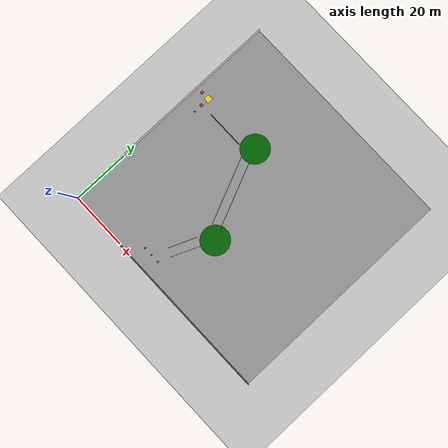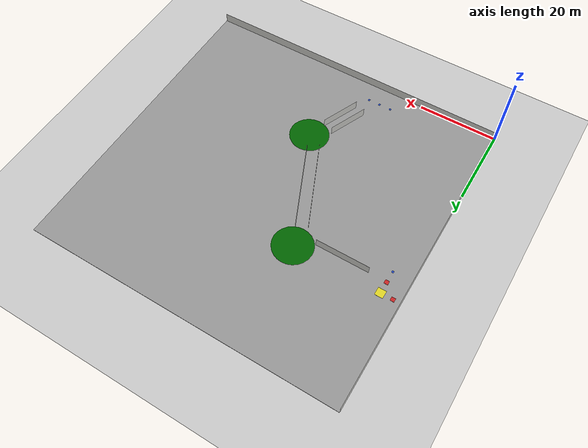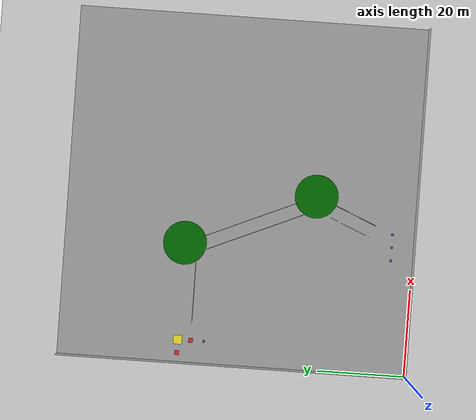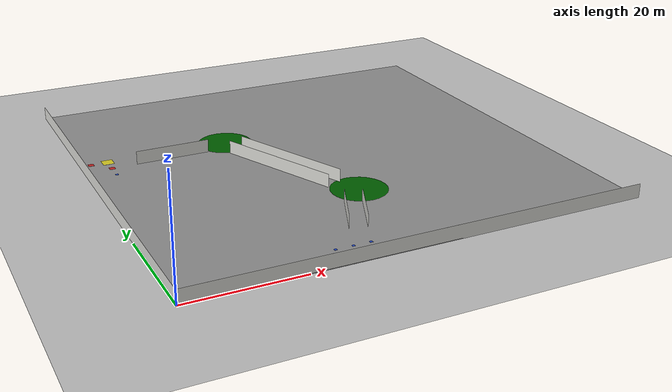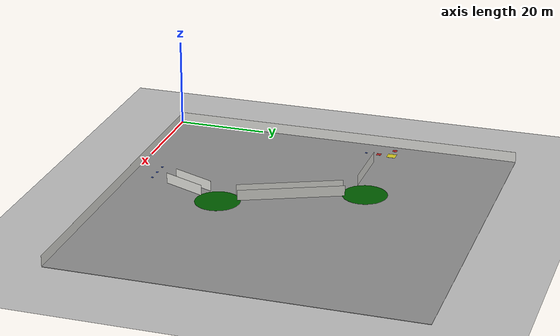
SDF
<sdf version="1.6">
 <world name="default">
  <model name="ground_plane">
   <static>1</static>
   <link name="link">
    <collision name="collision">
     <geometry><plane><normal>0 0 1</normal><size>100 100</size></plane></geometry>
     <surface><friction><ode><mu>100</mu><mu2>50</mu2></ode></friction></surface>
    </collision>
    <visual name="visual">
     <cast_shadows>0</cast_shadows>
     <geometry><plane><normal>0 0 1</normal><size>100 100</size></plane></geometry>
     <material>
      <script><uri>file://media/materials/scripts/gazebo.material</uri><name>Gazebo/Grey</name></script>
     </material>
    </visual>
   </link>
  </model>
  <model name="EMS_WALL">
   <pose>0 40 0 0 -0 0</pose>
   <link name="Wall_28">
    <collision name="Wall_28_Collision">
     <geometry><box><size>80 0.001 2.5</size></box></geometry>
     <pose>0 0 1.25 0 -0 0</pose>
    </collision>
    <visual name="Wall_28_Visual">
     <pose>0 0 1.25 0 -0 0</pose>
     <geometry><box><size>80 0.001 2.5</size></box></geometry>
     <material>
      <script><uri>file://media/materials/scripts/gazebo.material</uri><name>Gazebo/CeilingTiled</name></script>
      <ambient>1 0.764706 0.305882 1</ambient>
     </material>
    </visual>
    <pose>0 2e-06 0 0 -0 1.5708</pose>
   </link>
   <static>1</static>
  </model>
  <model name="EMS_WALL_clone_clone">
   <pose>40 0 0 0 -0 1.57</pose>
   <link name="Wall_28">
    <collision name="Wall_28_Collision">
     <geometry><box><size>80 0.001 2.5</size></box></geometry>
     <pose>0 0 1.25 0 -0 0</pose>
    </collision>
    <visual name="Wall_28_Visual">
     <pose>0 0 1.25 0 -0 0</pose>
     <geometry><box><size>80 0.001 2.5</size></box></geometry>
     <material>
      <script><uri>file://media/materials/scripts/gazebo.material</uri><name>Gazebo/CeilingTiled</name></script>
      <ambient>1 0.764706 0.305882 1</ambient>
     </material>
    </visual>
    <pose>0 2e-06 0 0 -0 1.5708</pose>
   </link>
   <static>1</static>
  </model>
  <model name="EMS_FLOOR_4">
   <pose>40 40 0 0 -0 0</pose>
   <link name="Wall_32">
    <collision name="Wall_32_Collision">
     <geometry><box><size>80.01 80 0.1</size></box></geometry>
     <pose>0 0 0.05 0 -0 0</pose>
    </collision>
    <visual name="Wall_32_Visual">
     <pose>0 0 0.05 0 -0 0</pose>
     <geometry><box><size>80.01 80 0.1</size></box></geometry>
     <material>
      <script><uri>file://media/materials/scripts/gazebo.material</uri><name>Gazebo/Grey</name></script>
      <ambient>1 1 1 1</ambient>
     </material>
    </visual>
    <pose>0 -1e-06 0 0 -0 1.5708</pose>
   </link>
   <static>1</static>
  </model>
  <model name="351_0">
   <pose>33.725 37.625 0 0 -0 0</pose>
   <link name="Wall_4">
    <collision name="Wall_4_Collision">
     <geometry><box><size>23.3941 0.001 2.5</size></box></geometry>
     <pose>0 0 1.25 0 -0 0</pose>
    </collision>
    <visual name="Wall_4_Visual">
     <pose>0 0 1.25 0 -0 0</pose>
     <geometry><box><size>23.3941 0.001 2.5</size></box></geometry>
     <material>
      <script><uri>file://media/materials/scripts/gazebo.material</uri><name>Gazebo/CeilingTiled</name></script>
      <ambient>0.435294 0.796078 0.67451 1</ambient>
     </material>
    </visual>
    <pose>1e-06 0 0 0 -0 1.9806</pose>
   </link>
   <static>1</static>
  </model>
  <model name="351_0_clone">
   <pose>30.9609 36.459 0 0 -0 0</pose>
   <link name="Wall_4">
    <collision name="Wall_4_Collision">
     <geometry><box><size>23.3941 0.001 2.5</size></box></geometry>
     <pose>0 0 1.25 0 -0 0</pose>
    </collision>
    <visual name="Wall_4_Visual">
     <pose>0 0 1.25 0 -0 0</pose>
     <geometry><box><size>23.3941 0.001 2.5</size></box></geometry>
     <material>
      <script><uri>file://media/materials/scripts/gazebo.material</uri><name>Gazebo/CeilingTiled</name></script>
      <ambient>0.435294 0.796078 0.67451 1</ambient>
     </material>
    </visual>
    <pose>1e-06 0 0 0 -0 1.9806</pose>
   </link>
   <static>1</static>
  </model>
  <model name="353_clone">
   <pose>16.225 49.5 0 0 -0 0</pose>
   <link name="Wall_10">
    <collision name="Wall_10_Collision">
     <geometry><box><size>13.45 0.001 2.5</size></box></geometry>
     <pose>0 0 1.25 0 -0 0</pose>
    </collision>
    <visual name="Wall_10_Visual">
     <pose>0 0 1.25 0 -0 0</pose>
     <geometry><box><size>13.45 0.001 2.5</size></box></geometry>
     <material>
      <script><uri>file://media/materials/scripts/gazebo.material</uri><name>Gazebo/CeilingTiled</name></script>
      <ambient>0.435294 0.796078 0.67451 1</ambient>
     </material>
    </visual>
    <pose>0 0 0 0 -0 3.14159</pose>
   </link>
   <static>1</static>
  </model>
  <model name="355">
   <pose>33.4866 15.0427 0 0 -0 0</pose>
   <link name="Wall_12">
    <collision name="Wall_12_Collision">
     <geometry><box><size>10.2688 0.001 2.5</size></box></geometry>
     <pose>0 0 1.25 0 -0 0</pose>
    </collision>
    <visual name="Wall_12_Visual">
     <pose>0 0 1.25 0 -0 0</pose>
     <geometry><box><size>10.2688 0.001 2.5</size></box></geometry>
     <material>
      <script><uri>file://media/materials/scripts/gazebo.material</uri><name>Gazebo/CeilingTiled</name></script>
      <ambient>0.435294 0.796078 0.67451 1</ambient>
     </material>
    </visual>
    <pose>0 0 0 0 -0 1.17099</pose>
   </link>
   <static>1</static>
  </model>
  <model name="355_clone">
   <pose>36.25 13.875 0 0 -0 0</pose>
   <link name="Wall_12">
    <collision name="Wall_12_Collision">
     <geometry><box><size>10.2688 0.001 2.5</size></box></geometry>
     <pose>0 0 1.25 0 -0 0</pose>
    </collision>
    <visual name="Wall_12_Visual">
     <pose>0 0 1.25 0 -0 0</pose>
     <geometry><box><size>10.2688 0.001 2.5</size></box></geometry>
     <material>
      <script><uri>file://media/materials/scripts/gazebo.material</uri><name>Gazebo/CeilingTiled</name></script>
      <ambient>0.435294 0.796078 0.67451 1</ambient>
     </material>
    </visual>
    <pose>0 0 0 0 -0 1.17099</pose>
   </link>
   <static>1</static>
  </model>
  <model name="my_objectT3">
   <link name="my_box">
    <inertial>
     <mass>1</mass>
     <inertia><ixx>1</ixx><ixy>0</ixy><ixz>0</ixz><iyy>100</iyy><iyz>0</iyz><izz>1</izz></inertia>
    </inertial>
    <collision name="my_box_collision"><geometry><box><size>2 2 0.01</size></box></geometry></collision>
    <visual name="my_box_visual">
     <geometry><box><size>2 2 0.01</size></box></geometry>
     <material>
      <script><name>Gazebo/Yellow</name><uri>file://media/materials/scripts/gazebo.material</uri></script>
     </material>
    </visual>
   </link>
   <pose>5.00076 52.4982 0.115003 -5e-06 7e-06 -0.000127</pose>
  </model>
  <model name="my_objecteg1w1">
   <link name="my_box">
    <inertial>
     <mass>1</mass>
     <inertia><ixx>1</ixx><ixy>0</ixy><ixz>0</ixz><iyy>100</iyy><iyz>0</iyz><izz>1</izz></inertia>
    </inertial>
    <collision name="my_box_collision"><geometry><box><size>1 1 0.01</size></box></geometry></collision>
    <visual name="my_box_visual">
     <geometry><box><size>1 1 0.01</size></box></geometry>
     <material>
      <script><name>Gazebo/Red</name><uri>file://media/materials/scripts/gazebo.material</uri></script>
     </material>
    </visual>
   </link>
   <pose>2 52.5 0.104995 0 -0 0</pose>
  </model>
  <model name="my_objecteg1w3">
   <link name="my_box">
    <inertial>
     <mass>1</mass>
     <inertia><ixx>1</ixx><ixy>0</ixy><ixz>0</ixz><iyy>100</iyy><iyz>0</iyz><izz>1</izz></inertia>
    </inertial>
    <collision name="my_box_collision"><geometry><box><size>1 1 0.01</size></box></geometry></collision>
    <visual name="my_box_visual">
     <geometry><box><size>1 1 0.01</size></box></geometry>
     <material>
      <script><name>Gazebo/Red</name><uri>file://media/materials/scripts/gazebo.material</uri></script>
     </material>
    </visual>
   </link>
   <pose>5.00058 49.4987 0.115012 4.2e-05 7e-06 0.000115</pose>
  </model>
  <model name="my_objectg2w1">
   <link name="my_box">
    <inertial>
     <mass>1</mass>
     <inertia><ixx>1</ixx><ixy>0</ixy><ixz>0</ixz><iyy>100</iyy><iyz>0</iyz><izz>1</izz></inertia>
    </inertial>
    <collision name="my_box_collision"><geometry><box><size>0.5 0.5 0.01</size></box></geometry></collision>
    <visual name="my_box_visual">
     <geometry><box><size>0.5 0.5 0.01</size></box></geometry>
     <material>
      <script><name>Gazebo/Blue</name><uri>file://media/materials/scripts/gazebo.material</uri></script>
     </material>
    </visual>
   </link>
   <pose>32.4976 5.00481 0.104995 1e-06 0 -0.000205</pose>
  </model>
  <model name="my_objectg2w2">
   <link name="my_box">
    <inertial>
     <mass>1</mass>
     <inertia><ixx>1</ixx><ixy>0</ixy><ixz>0</ixz><iyy>100</iyy><iyz>0</iyz><izz>1</izz></inertia>
    </inertial>
    <collision name="my_box_collision"><geometry><box><size>0.5 0.5 0.01</size></box></geometry></collision>
    <visual name="my_box_visual">
     <geometry><box><size>0.5 0.5 0.01</size></box></geometry>
     <material>
      <script><name>Gazebo/Blue</name><uri>file://media/materials/scripts/gazebo.material</uri></script>
     </material>
    </visual>
   </link>
   <pose>29.497 5.00463 0.104995 1e-06 0 -0.000266</pose>
  </model>
  <model name="my_objectg2w3">
   <link name="my_box">
    <inertial>
     <mass>1</mass>
     <inertia><ixx>1</ixx><ixy>0</ixy><ixz>0</ixz><iyy>100</iyy><iyz>0</iyz><izz>1</izz></inertia>
    </inertial>
    <collision name="my_box_collision"><geometry><box><size>0.5 0.5 0.01</size></box></geometry></collision>
    <visual name="my_box_visual">
     <geometry><box><size>0.5 0.5 0.01</size></box></geometry>
     <material>
      <script><name>Gazebo/Blue</name><uri>file://media/materials/scripts/gazebo.material</uri></script>
     </material>
    </visual>
   </link>
   <pose>26.4965 5.00563 0.104996 -1e-06 -0 -0.00103</pose>
  </model>
  <model name="my_objectg4w2">
   <link name="my_box">
    <inertial>
     <mass>1</mass>
     <inertia><ixx>1</ixx><ixy>0</ixy><ixz>0</ixz><iyy>100</iyy><iyz>0</iyz><izz>1</izz></inertia>
    </inertial>
    <collision name="my_box_collision"><geometry><box><size>0.5 0.5 0.01</size></box></geometry></collision>
    <visual name="my_box_visual">
     <geometry><box><size>0.5 0.5 0.01</size></box></geometry>
     <material>
      <script><name>Gazebo/Blue</name><uri>file://media/materials/scripts/gazebo.material</uri></script>
     </material>
    </visual>
   </link>
   <pose>4.99364 49.5095 0.105002 -0 7e-06 -0.000332</pose>
  </model>
  <model name="my_objectg4w3">
   <link name="my_box">
    <inertial>
     <mass>1</mass>
     <inertia><ixx>1</ixx><ixy>0</ixy><ixz>0</ixz><iyy>100</iyy><iyz>0</iyz><izz>1</izz></inertia>
    </inertial>
    <collision name="my_box_collision"><geometry><box><size>0.5 0.5 0.01</size></box></geometry></collision>
    <visual name="my_box_visual">
     <geometry><box><size>0.5 0.5 0.01</size></box></geometry>
     <material>
      <script><name>Gazebo/Blue</name><uri>file://media/materials/scripts/gazebo.material</uri></script>
     </material>
    </visual>
   </link>
   <pose>4.99409 46.509 0.104999 0 0 -0.000407</pose>
  </model>
  <model name="unit_cylinder_0_3">
   <link name="link">
    <inertial>
     <mass>1</mass>
     <inertia><ixx>0.145833</ixx><ixy>0</ixy><ixz>0</ixz><iyy>0.145833</iyy><iyz>0</iyz><izz>0.125</izz></inertia>
    </inertial>
    <gravity>0</gravity>
    <visual name="visual">
     <geometry><cylinder><radius>5</radius><length>0.01</length></cylinder></geometry>
     <material>
      <script><name>Gazebo/Grey</name><uri>file://media/materials/scripts/gazebo.material</uri></script>
      <ambient>0 0.4 0 0</ambient>
      <diffuse>0 0.4 0 0</diffuse>
      <specular>0 0.41 0 0</specular>
      <emissive>0 0.4 0 0</emissive>
      <shader type="vertex"><normal_map>__default__</normal_map></shader>
     </material>
    </visual>
   </link>
   <static>0</static>
   <pose>39.9922 22.9648 0.1 0 -0 0</pose>
  </model>
  <model name="unit_cylinder_0_3_clone_clone">
   <link name="link">
    <inertial>
     <mass>1</mass>
     <inertia><ixx>0.145833</ixx><ixy>0</ixy><ixz>0</ixz><iyy>0.145833</iyy><iyz>0</iyz><izz>0.125</izz></inertia>
    </inertial>
    <gravity>0</gravity>
    <visual name="visual">
     <geometry><cylinder><radius>5</radius><length>0.01</length></cylinder></geometry>
     <material>
      <script><name>Gazebo/Grey</name><uri>file://media/materials/scripts/gazebo.material</uri></script>
      <ambient>0 0.4 0 0</ambient>
      <diffuse>0 0.4 0 0</diffuse>
      <specular>0 0.41 0 0</specular>
      <emissive>0 0.4 0 0</emissive>
      <shader type="vertex"><normal_map>__default__</normal_map></shader>
     </material>
    </visual>
   </link>
   <static>0</static>
   <pose>27.2881 52.3623 0.1 0 -0 0</pose>
  </model>
 </world>
</sdf>
